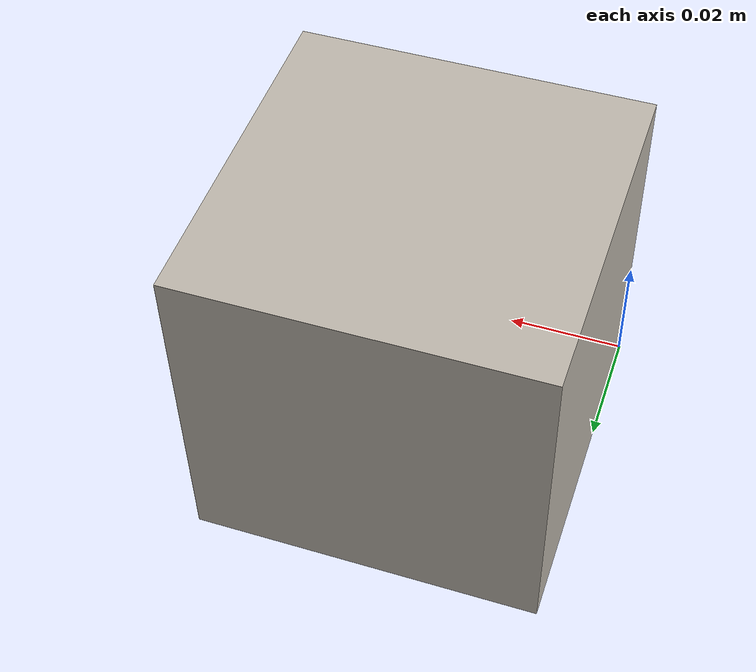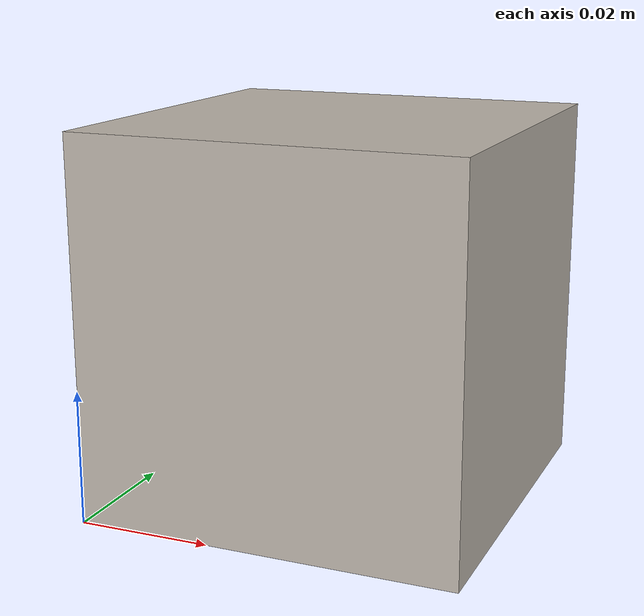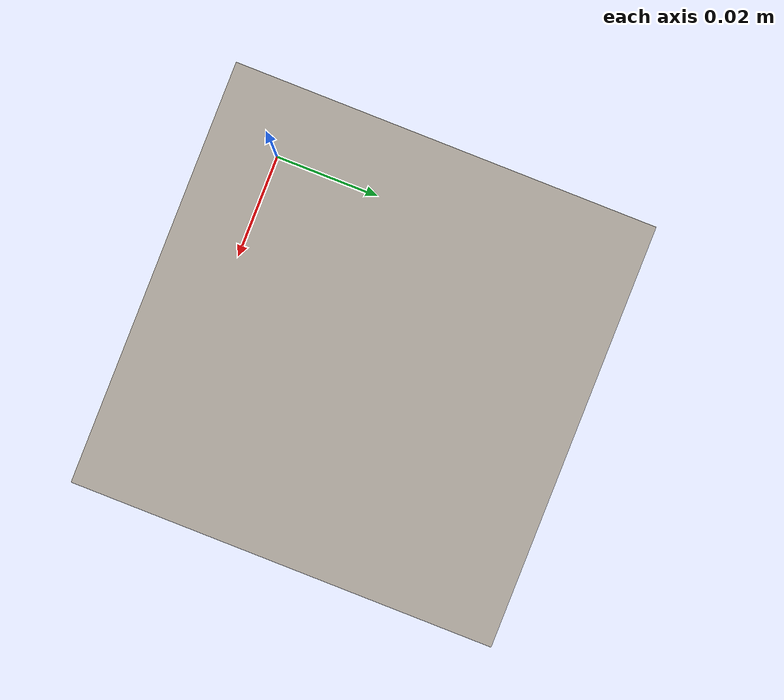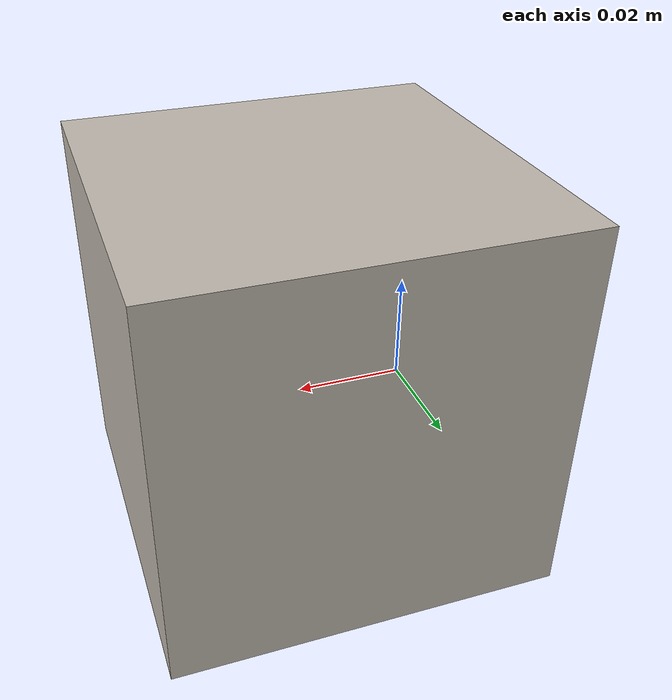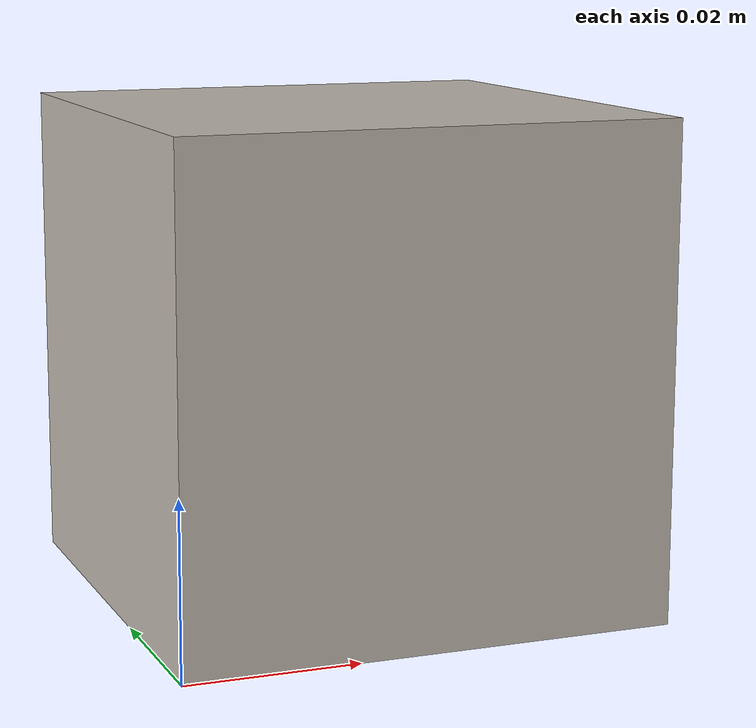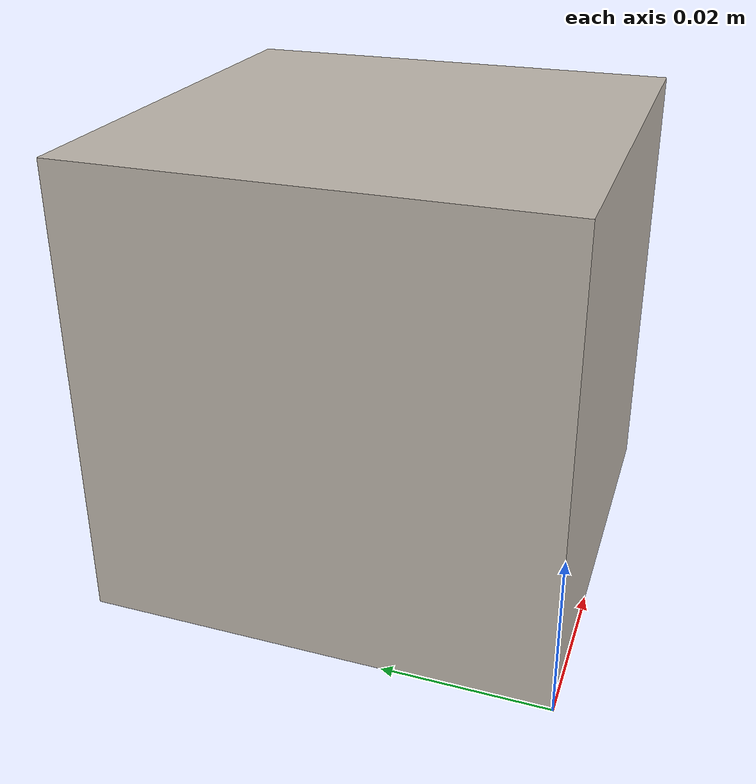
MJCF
<mujoco model="rubik-v1.50">
	<asset>
		<texture name='rubik' file="cube/rubik.png" gridsize="3 4" gridlayout=".U..LFRB.D.."/>
		<material name="MatRubik" texture="rubik" specular="1" shininess=".3" reflectance="0"/>
	</asset>

	<worldbody>
		<body name="middle" pos=".0285 .0285 .0285">
			<geom name="middle" type="box" size=".0285 .0285 .0285" material="MatRubik" condim="4"/>
			<site name="center" pos="0 0 0" rgba="1 0 0 1" size="0.01 0.01 0.01"></site>
			<joint name="cube_tx" type="slide" axis="1 0 0" limited="false"/>
			<joint name="cube_ty" type="slide" axis="0 1 0" limited="false"/>
			<joint name="cube_tz" type="slide" axis="0 0 1" limited="false"/>
			<joint name="cube_rot" type="ball" limited="false"/>
		</body>

		<!-- 注释掉悬浮的注释体，或者给它添加质量 -->
	</worldbody>

</mujoco>
